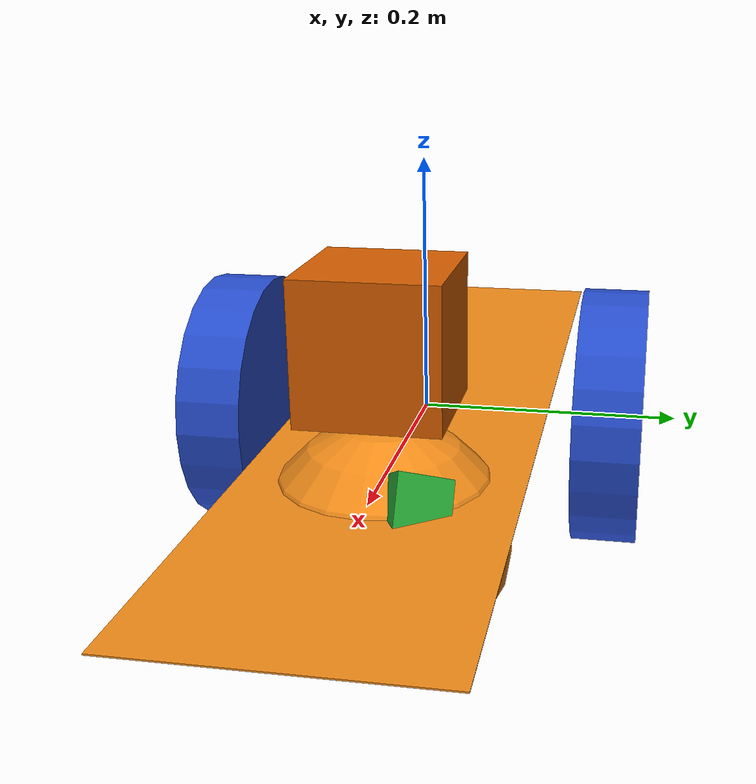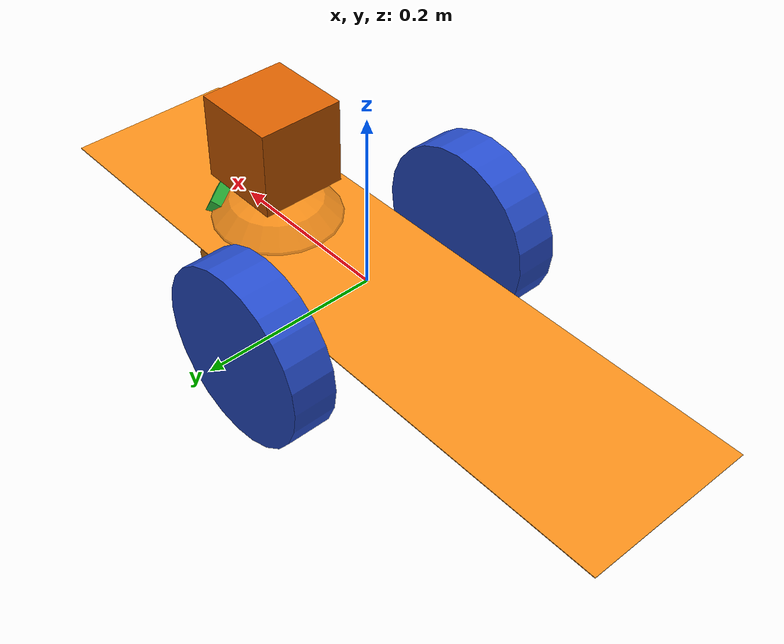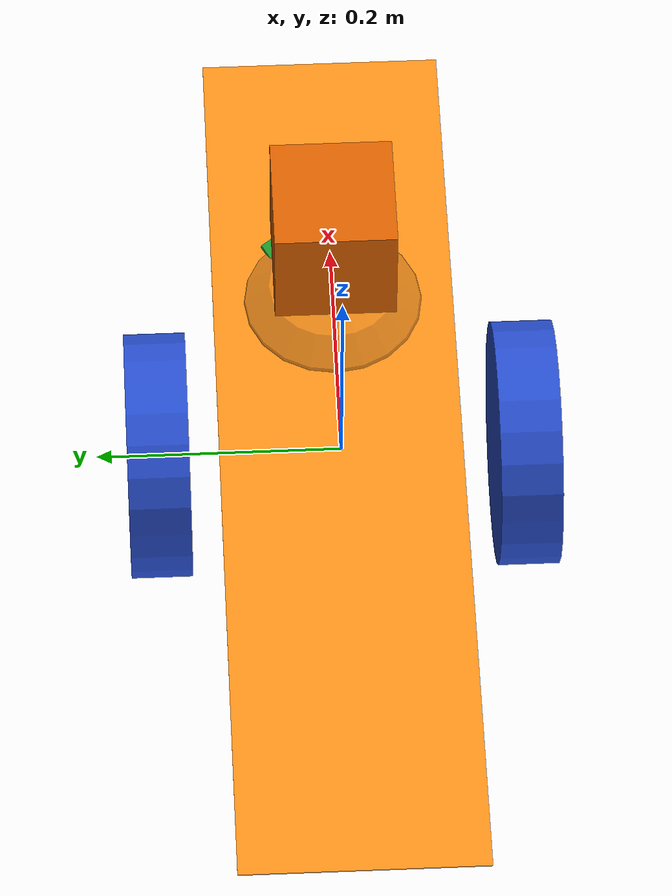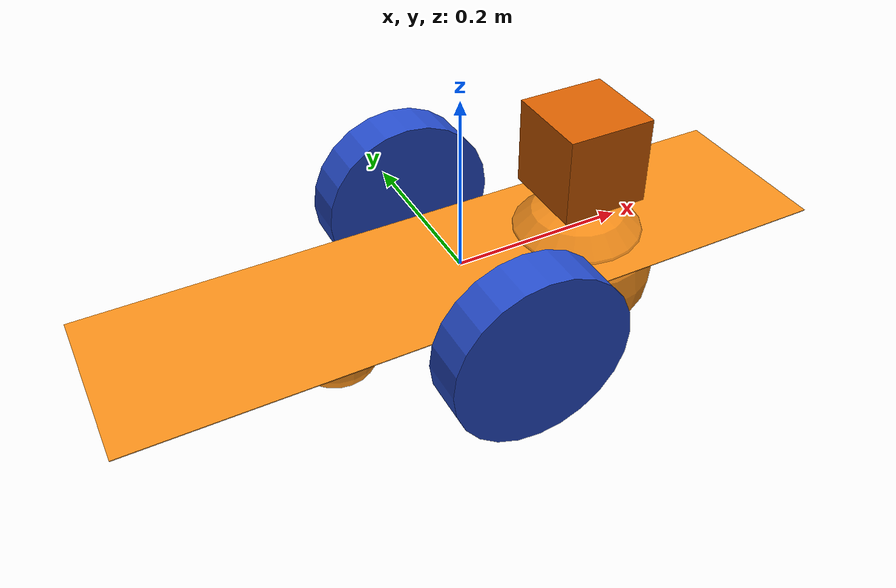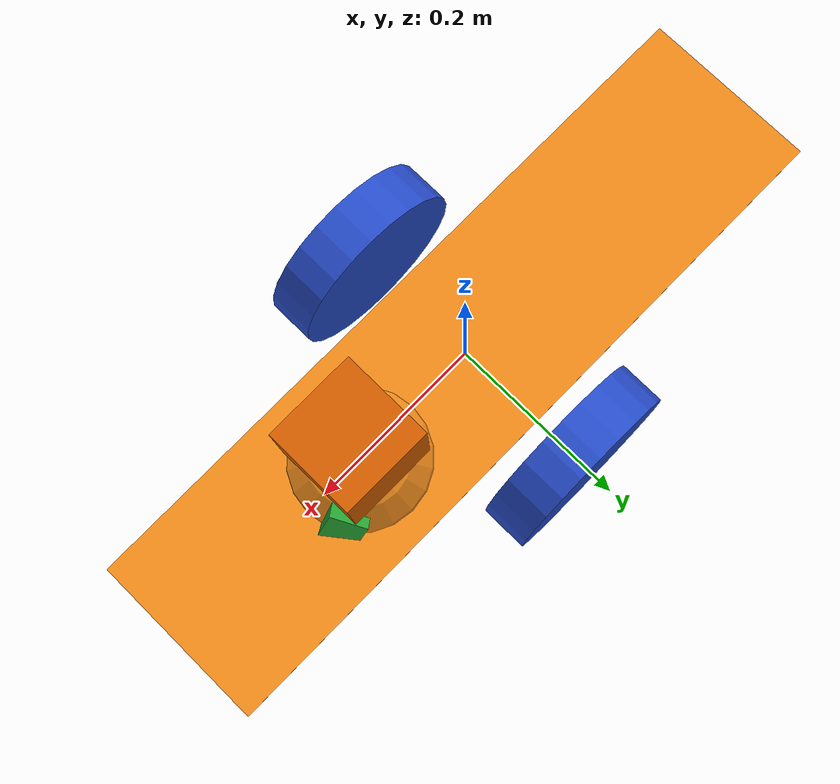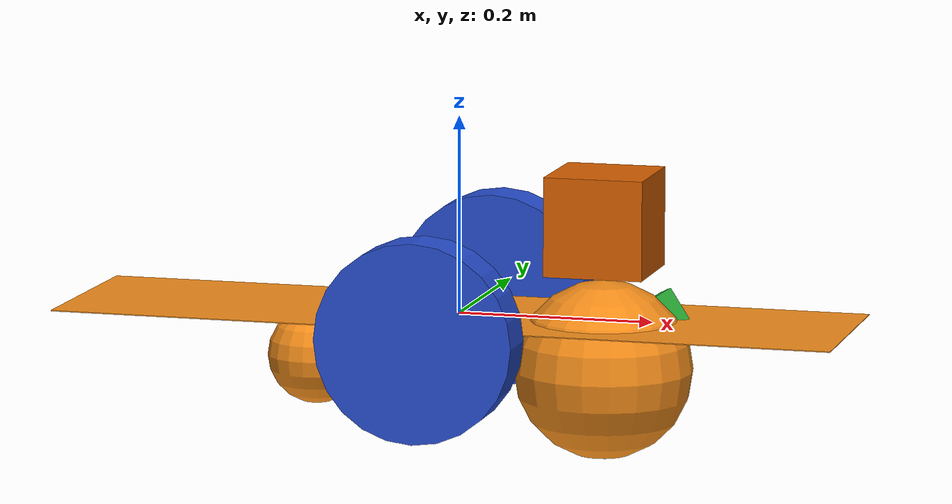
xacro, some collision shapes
<?xml version='1.0'?>

<robot name="go_bot" xmlns:xacro="http://www.ros.org/wiki/xacro">

  <xacro:include filename="$(find go_bot)/urdf/mybot.gazebo" />
  <xacro:include filename="$(find go_bot)/urdf/materials.xacro" />

  <link name="robot_footprint"></link>

  <joint name="robot_footprint_joint" type="fixed">
    <origin xyz="0 0 0" rpy="0 0 0" />
    <parent link="robot_footprint"/>
    <child link="chassis" />
  </joint>

  <link name='chassis'>
    <pose>0 0 0.1 0 0 0</pose>

    <inertial>
      <mass value="15.0"/>
      <origin xyz="0.0 0 0" rpy=" 0 0 0"/>
      <inertia
          ixx="0.1" ixy="0" ixz="0"
          iyy="0.1" iyz="0"
          izz="0.1"
      />
    </inertial>

    <collision name='collision'>
      <origin xyz="0 0 0" rpy=" 0 0 0"/>
      <geometry>
        <box size=".4 .2 .1"/>
      </geometry>
    </collision>

    <visual name='chassis_visual'>
      <origin xyz="0 0 0" rpy=" 0 0 0"/>
      <geometry>
        <box size=".8 .2 .001"/>
      </geometry>
    </visual>

    <collision name='back_caster_collision'>
      <origin xyz="-0.15 0 -0.05" rpy=" 0 0 0"/>
      <geometry>
        <sphere radius="0.05"/>
      </geometry>
      <surface>
        <friction>
          <ode>
            <mu>0</mu>
            <mu2>0</mu2>
            <slip1>1.0</slip1>
            <slip2>1.0</slip2>
          </ode>
        </friction>
      </surface>
    </collision>

    <visual name='back_caster_visual'>
      <origin xyz="-0.15 0 -0.05" rpy=" 0 0 0"/>
      <geometry>
        <sphere radius="0.05"/>
      </geometry>
    </visual>

    <collision name='front_caster_collision'>
      <origin xyz="0.15 0 -0.05" rpy=" 0 0 0"/>
      <geometry>
        <sphere radius="0.05"/>
      </geometry>
      <surface>
        <friction>
          <ode>
            <mu>0</mu>
            <mu2>0</mu2>
            <slip1>1.0</slip1>
            <slip2>1.0</slip2>
          </ode>
        </friction>
      </surface>
    </collision>

    <visual name='front_caster_visual'>
      <origin xyz="0.15 0 -0.05" rpy=" 0 0 0"/>
      <geometry>
        <sphere radius="0.09"/>
      </geometry>
    </visual>

  </link>

  <link name="left_wheel">
    <collision name="collision">
      <origin xyz="0 0 0" rpy="0 1.5707 1.5707"/>
      <geometry>
        <cylinder radius="0.1" length="0.05"/>
      </geometry>
    </collision>
    <visual name="left_wheel_visual">
      <origin xyz="0 0 0" rpy="0 1.5707 1.5707"/>
      <geometry>
        <cylinder radius="0.1" length="0.05"/>
      </geometry>
    </visual>
    <inertial>
      <origin xyz="0 0 0" rpy="0 1.5707 1.5707"/>
      <mass value="5"/>
      <inertia
        ixx=".1" ixy="0.0" ixz="0.0"
        iyy=".1" iyz="0.0"
        izz=".1"/>
    </inertial>
  </link>

  <joint type="continuous" name="left_wheel_hinge">
    <origin xyz="0 0.15 0" rpy="0 0 0"/>
    <child link="left_wheel"/>
    <parent link="chassis"/>
    <axis xyz="0 1 0" rpy="0 0 0"/>
    <limit effort="10000" velocity="1000"/>
    <joint_properties damping="1.0" friction="1.0"/>
  </joint>

  <link name="right_wheel">
    <collision name="collision">
      <origin xyz="0 0 0" rpy="0 1.5707 1.5707"/>
      <geometry>
        <cylinder radius="0.1" length="0.05"/>
      </geometry>
    </collision>
    <visual name="right_wheel_visual">
      <origin xyz="0 0 0" rpy="0 1.5707 1.5707"/>
      <geometry>
        <cylinder radius="0.1" length="0.05"/>
      </geometry>
    </visual>
    <inertial>
      <origin xyz="0 0 0" rpy="0 1.5707 1.5707"/>
      <mass value="5"/>
      <inertia
        ixx=".1" ixy="0.0" ixz="0.0"
        iyy=".1" iyz="0.0"
        izz=".1"/>
    </inertial>
  </link>

  <joint type="continuous" name="right_wheel_hinge">
    <origin xyz="0 -0.15 0" rpy="0 0 0"/>
    <child link="right_wheel"/>
    <parent link="chassis"/>
    <axis xyz="0 1 0" rpy="0 0 0"/>
    <limit effort="10000" velocity="1000"/>
    <joint_properties damping="1.0" friction="1.0"/>
  </joint>

  <xacro:property name="cameraSize" value="0.04"/>
  <xacro:property name="cameraMass" value="0.1"/>

  <!-- Camera -->
  <link name="camera">
    <collision>
      <origin xyz="0 0 0" rpy="0 0 1"/>
      <geometry>
        <box size="${cameraSize} ${cameraSize} ${cameraSize}"/>
      </geometry>
    </collision>

    <visual>
      <origin xyz="0 0 0" rpy="1 1 0"/>
      <geometry>
        <box size="${cameraSize} ${cameraSize} ${cameraSize}"/>
      </geometry>
      <material name="green"/>
    </visual>

    <inertial>
      <mass value="${cameraMass}" />
      <origin xyz="0 0 0" rpy="0 0 0"/>
      <box_inertia m="${cameraMass}" x="${cameraSize}" y="${cameraSize}" z="${cameraSize}" />
      <inertia ixx="1e-6" ixy="0" ixz="0" iyy="1e-6" iyz="0" izz="1e-6" />
    </inertial>
  </link>

  <joint name="camera_joint" type="fixed">
    <axis xyz="0 1 0" />
    <origin xyz=".2 0.03 0" rpy="0 0 0"/>
    <parent link="chassis"/>
    <child link="camera"/>
  </joint>

  <joint name="hokuyo_joint" type="fixed">
    <axis xyz="0 1 0" />
    <origin xyz=".15 0 .1" rpy="0 0 0"/>
    <parent link="chassis"/>
    <child link="hokuyo"/>
  </joint>
  <!-- Hokuyo Laser -->
  <link name="hokuyo">
    <collision>
      <origin xyz="0 0 0" rpy="0 0 0"/>
      <geometry>
          <box size="0.1 0.1 0.1"/>
      </geometry>
    </collision>

    <visual>
      <origin xyz="0 0 0" rpy="0 0 0"/>
      <geometry>
          <mesh filename="package://go_bot/meshes/hokuyo.dae"/>
      </geometry>
    </visual>

    <inertial>
      <mass value="1e-5" />
      <origin xyz="0 0 0" rpy="0 0 0"/>
      <inertia ixx="1e-6" ixy="0" ixz="0" iyy="1e-6" iyz="0" izz="1e-6" />
    </inertial>
  </link>

</robot>
